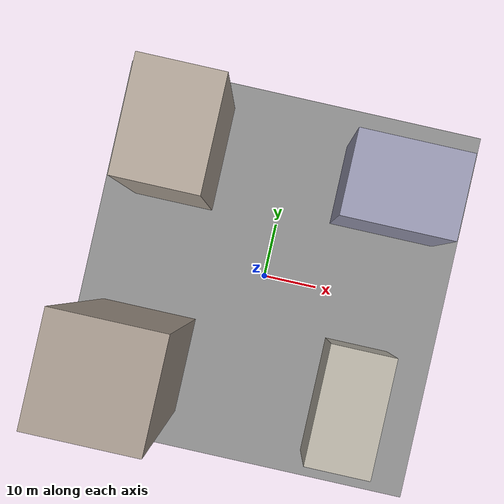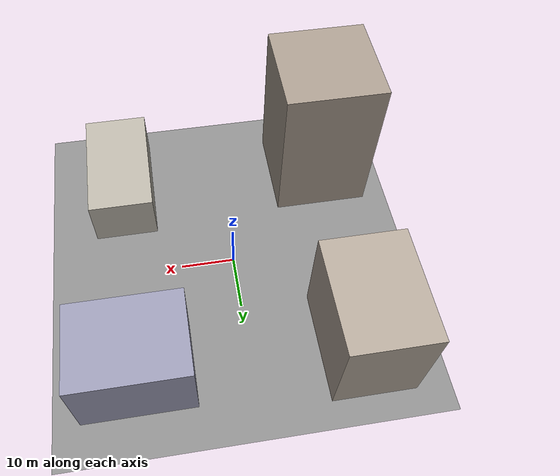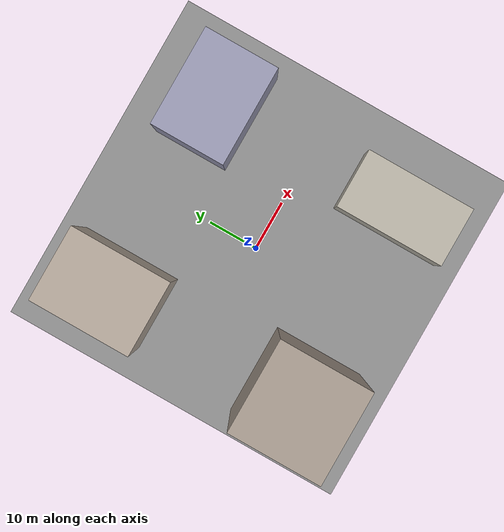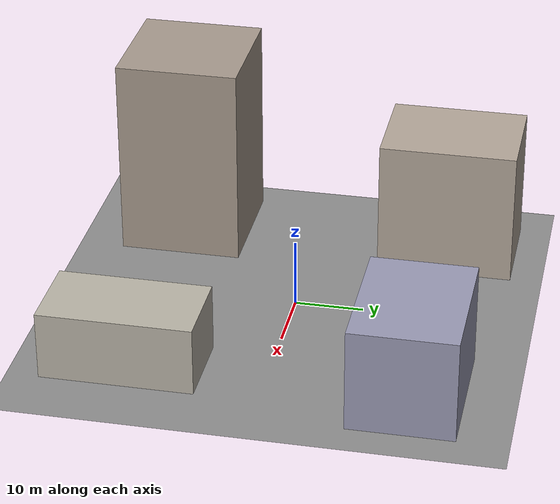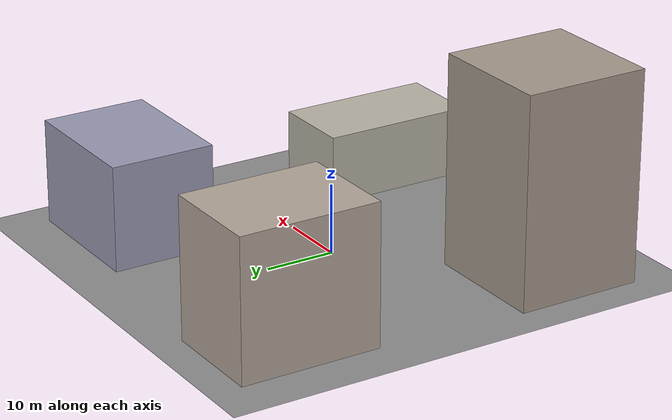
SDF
<?xml version="1.0" ?>
<sdf version="1.6">
  <world name="urban_block_01">

    <!-- Physics Engine Configuration                                      -->
    <physics type="ode">
      <real_time_update_rate>1000</real_time_update_rate>
      <max_step_size>0.001</max_step_size>
      <real_time_factor>1</real_time_factor>
      <ode>
        <solver>
          <type>quick</type>
          <iters>50</iters>
          <sor>1.3</sor>
        </solver>
        <constraints>
          <cfm>0</cfm>
          <erp>0.2</erp>
          <contact_max_correcting_vel>100</contact_max_correcting_vel>
          <contact_surface_layer>0.001</contact_surface_layer>
        </constraints>
      </ode>
    </physics>

    <!-- Scene and Lighting                                                -->
    <scene>
      <ambient>0.5 0.5 0.5 1</ambient>
      <background>0.7 0.8 0.95 1</background>
      <shadows>true</shadows>
    </scene>

    <!-- Sun light source — positioned high and angled for realistic shadows -->
    <light type="directional" name="sun">
      <cast_shadows>true</cast_shadows>
      <pose>0 0 100 0 0 0</pose>
      <diffuse>0.9 0.9 0.85 1</diffuse>
      <specular>0.3 0.3 0.3 1</specular>
      <direction>-0.5 0.3 -0.9</direction>
      <attenuation>
        <range>1000</range>
        <constant>0.9</constant>
        <linear>0.01</linear>
        <quadratic>0.001</quadratic>
      </attenuation>
    </light>

    <!-- Ground Plane                                                      -->
    <model name="ground_plane">
      <static>true</static>
      <link name="ground_plane_link">
        <collision name="ground_plane_collision">
          <geometry>
            <plane>
              <normal>0 0 1</normal>
              <size>200 200</size>
            </plane>
          </geometry>
          <surface>
            <friction>
              <ode>
                <mu>100</mu>
                <mu2>50</mu2>
              </ode>
            </friction>
          </surface>
        </collision>
        <visual name="ground_plane_visual">
          <geometry>
            <plane>
              <normal>0 0 1</normal>
              <size>200 200</size>
            </plane>
          </geometry>
          <material>
            <ambient>0.4 0.4 0.4 1</ambient>
            <diffuse>0.55 0.55 0.55 1</diffuse>
            <specular>0.1 0.1 0.1 1</specular>
          </material>
        </visual>
      </link>
    </model>

    <!-- Building 01 — Northwest (20m tall)                                -->
    <!-- Position: (-20, 20, 10) — offset from center, half-height for    -->
    <!-- box origin. 15m wide x 20m deep x 20m tall.                      -->
    <model name="building_01">
      <static>true</static>
      <pose>-20 20 10 0 0 0</pose>
      <link name="building_01_link">
        <collision name="building_01_collision">
          <geometry>
            <box>
              <size>15 20 20</size>
            </box>
          </geometry>
        </collision>
        <visual name="building_01_visual">
          <geometry>
            <box>
              <size>15 20 20</size>
            </box>
          </geometry>
          <material>
            <ambient>0.6 0.55 0.5 1</ambient>
            <diffuse>0.7 0.65 0.6 1</diffuse>
            <specular>0.2 0.2 0.2 1</specular>
          </material>
        </visual>
      </link>
    </model>

    <!-- Building 02 — Northeast (15m tall)                                -->
    <!-- Position: (20, 20, 7.5) — 20m wide x 15m deep x 15m tall.       -->
    <model name="building_02">
      <static>true</static>
      <pose>20 20 7.5 0 0 0</pose>
      <link name="building_02_link">
        <collision name="building_02_collision">
          <geometry>
            <box>
              <size>20 15 15</size>
            </box>
          </geometry>
        </collision>
        <visual name="building_02_visual">
          <geometry>
            <box>
              <size>20 15 15</size>
            </box>
          </geometry>
          <material>
            <ambient>0.5 0.5 0.6 1</ambient>
            <diffuse>0.6 0.6 0.7 1</diffuse>
            <specular>0.2 0.2 0.2 1</specular>
          </material>
        </visual>
      </link>
    </model>

    <!-- Building 03 — Southwest (30m tall, tallest)                       -->
    <!-- Position: (-20, -20, 15) — 18m wide x 18m deep x 30m tall.      -->
    <model name="building_03">
      <static>true</static>
      <pose>-20 -20 15 0 0 0</pose>
      <link name="building_03_link">
        <collision name="building_03_collision">
          <geometry>
            <box>
              <size>18 18 30</size>
            </box>
          </geometry>
        </collision>
        <visual name="building_03_visual">
          <geometry>
            <box>
              <size>18 18 30</size>
            </box>
          </geometry>
          <material>
            <ambient>0.55 0.5 0.45 1</ambient>
            <diffuse>0.65 0.6 0.55 1</diffuse>
            <specular>0.2 0.2 0.2 1</specular>
          </material>
        </visual>
      </link>
    </model>

    <!-- Building 04 — Southeast (10m tall, shortest)                      -->
    <!-- Position: (20, -20, 5) — 12m wide x 22m deep x 10m tall.        -->
    <model name="building_04">
      <static>true</static>
      <pose>20 -20 5 0 0 0</pose>
      <link name="building_04_link">
        <collision name="building_04_collision">
          <geometry>
            <box>
              <size>12 22 10</size>
            </box>
          </geometry>
        </collision>
        <visual name="building_04_visual">
          <geometry>
            <box>
              <size>12 22 10</size>
            </box>
          </geometry>
          <material>
            <ambient>0.6 0.58 0.55 1</ambient>
            <diffuse>0.72 0.7 0.65 1</diffuse>
            <specular>0.2 0.2 0.2 1</specular>
          </material>
        </visual>
      </link>
    </model>

  </world>
</sdf>
